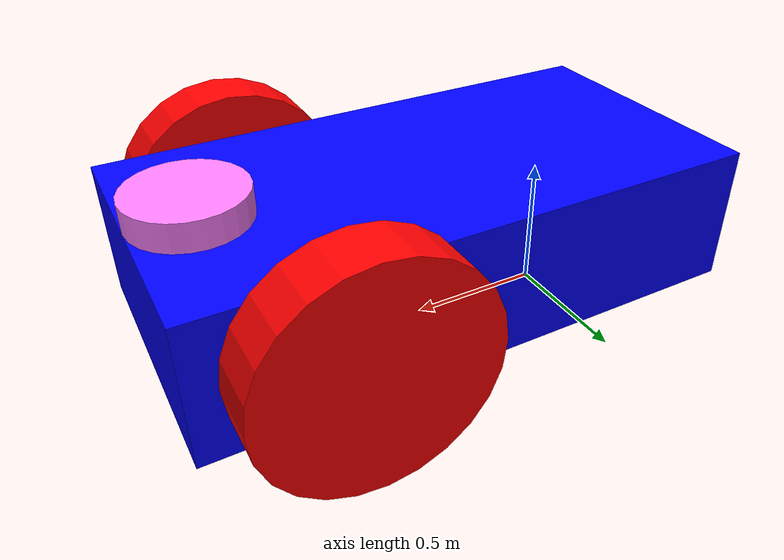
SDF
<?xml version="1.0" ?>
<sdf version="1.8">
    <model name='vehicle_blue' canonical_link='vehicle_blue'>

        <plugin
            filename="gz-sim-diff-drive-system"
            name="gz::sim::systems::DiffDrive">
            <left_joint>left_wheel_joint</left_joint>
            <right_joint>right_wheel_joint</right_joint>
            <wheel_separation>1.2</wheel_separation>
            <wheel_radius>0.4</wheel_radius>
            <odom_publish_frequency>1</odom_publish_frequency>
            <topic>cmd_vel</topic>
        </plugin>

        <link name='vehicle_blue'>
            <pose relative_to='__model__'>0 0 0 0 0 0</pose>
        </link>

        <joint name='chassis_joint' type='fixed'>
            <parent>vehicle_blue</parent>
            <child>chassis</child>
        </joint>

        <!--chassis-->
        <link name='chassis'>
            <pose relative_to='vehicle_blue'>0.5 0 0.4 0 0 0</pose>
            <visual name='visual_chassis'>
                <geometry>
                    <box>
                        <size>2.0 1.0 0.5</size>
                    </box>
                </geometry>
                <!--Color of the link-->
                <material>
                    <ambient>0.0 0.0 1.0 1</ambient>
                    <diffuse>0.0 0.0 1.0 1</diffuse>
                    <specular>0.0 0.0 1.0 1</specular>
                </material>
            </visual>
            <collision name='collision'>
                <geometry>
                    <box>
                        <size>2.0 1.0 0.5</size>
                    </box>
                </geometry>
            </collision>
        </link>
                    <!--lidar frame-->
        <frame name="lidar_frame" attached_to='chassis'>
            <pose>0.8 0 0.25 0 0 0</pose>
        </frame>
        <link name='lidar_link'>
            <pose relative_to="lidar_frame"/> <!--angles are in radian-->
            <visual name='visual_lidar'>
                <geometry>
                    <cylinder>
                        <radius>0.2</radius>
                        <length>0.2</length>
                    </cylinder>
                </geometry>
                <material>
                    <ambient>1.0 0.5 1.0 1</ambient>
                    <diffuse>1.0 0.5 1.0 1</diffuse>
                    <specular>1.0 0.5 1.0 1</specular>
                </material>
            </visual>
            <collision name='collision'>
                <geometry>
                    <cylinder>
                        <radius>0.2</radius>
                        <length>0.2</length>
                    </cylinder>
                </geometry>
            </collision>
           <sensor name="imu_sensor" type="imu">
                <always_on>1</always_on>
                <update_rate>1</update_rate>
                <visualize>true</visualize>
                <topic>imu</topic>
            </sensor>
            <sensor name='gpu_lidar' type='gpu_lidar'>
                <pose relative_to='lidar_link'>0 0 0 0 0 0</pose>
                <topic>lidar</topic>
                <update_rate>5</update_rate>
                <ray>
                    <scan>
                        <horizontal>
                            <samples>640</samples>
                            <resolution>1</resolution>
                            <min_angle>-1.396263</min_angle>
                            <max_angle>1.396263</max_angle>
                        </horizontal>
                        <vertical>
                            <samples>1</samples>
                            <resolution>0.01</resolution>
                            <min_angle>0</min_angle>
                            <max_angle>0</max_angle>
                        </vertical>
                    </scan>
                    <range>
                        <min>0.08</min>
                        <max>10.0</max>
                        <resolution>0.01</resolution>
                    </range>
                </ray>
                <always_on>1</always_on>
                <visualize>true</visualize>
            </sensor>

        </link>

        <!--Left wheel-->
        <link name='left_wheel'>
            <pose relative_to="chassis">0.5 0.6 0 -1.5707 0 0</pose> <!--angles are in radian-->
            <visual name='visual_left_wheel'>
                <geometry>
                    <cylinder>
                        <radius>0.4</radius>
                        <length>0.2</length>
                    </cylinder>
                </geometry>
                <material>
                    <ambient>1.0 0.0 0.0 1</ambient>
                    <diffuse>1.0 0.0 0.0 1</diffuse>
                    <specular>1.0 0.0 0.0 1</specular>
                </material>
            </visual>
            <collision name='collision'>
                <geometry>
                    <cylinder>
                        <radius>0.4</radius>
                        <length>0.2</length>
                    </cylinder>
                </geometry>
            </collision>
        </link>
        <!--The same as left wheel but with different position-->
        <link name='right_wheel'>
            <pose relative_to="chassis">0.5 -0.6 0 -1.5707 0 0</pose> <!--angles are in radian-->

            <visual name='visual_right_wheel'>
                <geometry>
                    <cylinder>
                        <radius>0.4</radius>
                        <length>0.2</length>
                    </cylinder>
                </geometry>
                <material>
                    <ambient>1.0 0.0 0.0 1</ambient>
                    <diffuse>1.0 0.0 0.0 1</diffuse>
                    <specular>1.0 0.0 0.0 1</specular>
                </material>
            </visual>
            <collision name='collision'>
                <geometry>
                    <cylinder>
                        <radius>0.4</radius>
                        <length>0.2</length>
                    </cylinder>
                </geometry>
            </collision>
        </link>
        <!--arbitrary frame-->
        <frame name="caster_frame" attached_to='chassis'>
            <pose>-0.8 0 -0.2 0 0 0</pose>
        </frame>

        <!--caster wheel-->
        <link name='caster'>
            <pose relative_to='caster_frame'/>
            <visual name='visual_caster'>
                <geometry>
                    <sphere>
                        <radius>0.2</radius>
                    </sphere>
                </geometry>
                <material>
                    <ambient>0.0 1 0.0 1</ambient>
                    <diffuse>0.0 1 0.0 1</diffuse>
                    <specular>0.0 1 0.0 1</specular>
                </material>
            </visual>
            <collision name='collision'>
                <geometry>
                    <sphere>
                        <radius>0.2</radius>
                    </sphere>
                </geometry>
            </collision>
        </link>
        <!--left wheel joint-->
        <joint name='left_wheel_joint' type='revolute'>
            <pose relative_to='left_wheel'/>
            <parent>chassis</parent>
            <child>left_wheel</child>
            <axis>
                <xyz expressed_in='__model__'>0 1 0</xyz> <!--can be descired to any frame or even arbitrary frames-->
                <limit>
                    <lower>-1.79769e+308</lower>    <!--negative infinity-->
                    <upper>1.79769e+308</upper>     <!--positive infinity-->
                </limit>
            </axis>
        </joint>
        <!--right wheel joint-->
        <joint name='right_wheel_joint' type='revolute'>
            <pose relative_to='right_wheel'/>
            <parent>chassis</parent>
            <child>right_wheel</child>
            <axis>
                <xyz expressed_in='__model__'>0 1 0</xyz>
                <limit>
                    <lower>-1.79769e+308</lower>    <!--negative infinity-->
                    <upper>1.79769e+308</upper>     <!--positive infinity-->
                </limit>
            </axis>
        </joint>
        <!--caster wheel joint--> <!--pose defult value is the child-->
        <joint name='caster_wheel' type='fixed'>
            <parent>chassis</parent>
            <child>caster</child>
        </joint>
        <joint name='lidar_joint' type='fixed'>
            <parent>chassis</parent>
            <child>lidar_link</child>
        </joint>
    </model>
</sdf>
